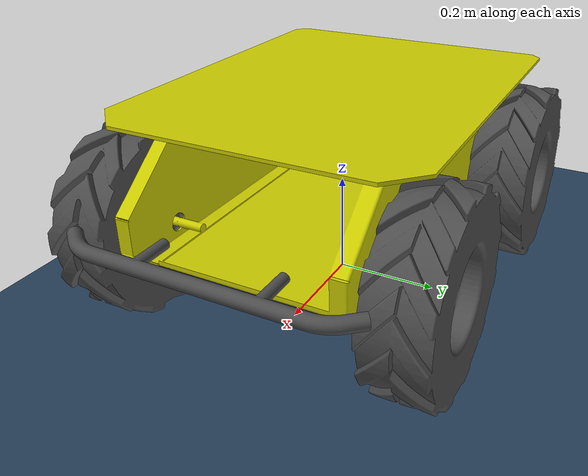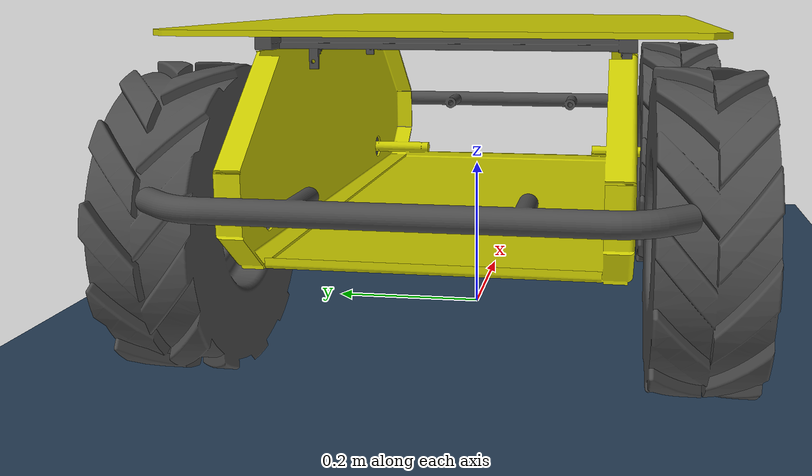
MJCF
<?xml version="1.0" encoding="utf-8"?>
<mujoco model="husky">
    <compiler angle="radian" coordinate="local" inertiafromgeom="true" meshdir="meshes"/>

    <default>
        <joint armature="1" damping="1" limited="false"/>
        <geom contype="1" conaffinity="1" condim="3" friction="1.0 0.0 0.0"/>
    </default>

    <option timestep="0.01" gravity="0 0 -9.81"/>

    <asset>
        <texture type="skybox" builtin="gradient" rgb1="0.3 0.5 0.7" rgb2="0 0 0" width="512" height="512"/>
        <texture name="grid" type="2d" builtin="checker" rgb1=".1 .2 .3" rgb2=".2 .3 .4" width="512" height="512"/>
        <material name="grid" texture="grid" texrepeat="1 1" texuniform="true" reflectance=".2"/>
        <material name="Black" rgba="0.1 0.1 0.1 1.0"/>
        <material name="DarkGrey" rgba="0.3 0.3 0.3 1.0"/>
        <material name="Yellow" rgba="0.8 0.8 0.0 1.0"/>

        <mesh name="base_link" file="base_link.stl"/>
        <mesh name="wheel" file="wheel.stl"/>
        <mesh name="top_plate" file="top_plate.stl"/>
        <mesh name="user_rail" file="user_rail.stl"/>
        <mesh name="bumper" file="bumper.stl"/>
    </asset>

    <worldbody>
        <light name="sunlight"
               directional="true"
               pos="0 0 100"
               dir="0 0 -1"
               diffuse="0.8 0.8 0.8"
               specular="0.2 0.2 0.2"
               ambient="0.4 0.4 0.4"/>
        <camera name="tracking" mode="trackcom" pos="0 -3 1" xyaxes="1 0 0 0 0 1"/>
        <geom name="floor" type="plane" size="10 10 0.1" material="grid"/>

        <!-- Base footprint -->
        <body name="base_footprint" pos="0 0 0">
            <joint name="free" type="free"/>

            <!-- Base link -->
            <body name="base_link" pos="0 0 0.14493">
                <geom type="mesh" mesh="base_link" material="Yellow"/>

                <!-- Front Left Wheel -->
                <body name="front_left_wheel_link" pos="0.256 0.2854 0.03282">
                    <joint name="wheel_fl" type="hinge" axis="0 1 0" damping="0.1"/>
                    <geom type="mesh" mesh="wheel" material="DarkGrey"/>
                </body>

                <!-- Front Right Wheel -->
                <body name="front_right_wheel_link" pos="0.256 -0.2854 0.03282">
                    <joint name="wheel_fr" type="hinge" axis="0 1 0" damping="0.1"/>
                    <geom type="mesh" mesh="wheel" material="DarkGrey"/>
                </body>

                <!-- Rear Left Wheel -->
                <body name="rear_left_wheel_link" pos="-0.256 0.2854 0.03282">
                    <joint name="wheel_bl" type="hinge" axis="0 1 0" damping="0.1"/>
                    <geom type="mesh" mesh="wheel" material="DarkGrey"/>
                </body>

                <!-- Rear Right Wheel -->
                <body name="rear_right_wheel_link" pos="-0.256 -0.2854 0.03282">
                    <joint name="wheel_br" type="hinge" axis="0 1 0" damping="0.1"/>
                    <geom type="mesh" mesh="wheel" material="DarkGrey"/>
                </body>

                <!-- Top Plate -->
                <body name="top_plate_link" pos="0 0 0.245">
                    <geom type="mesh" mesh="top_plate" material="Yellow"/>
                </body>

                <!-- User Rail -->
                <body name="user_rail_link" pos="0.272 0 0.245">
                    <geom type="mesh" mesh="user_rail" material="DarkGrey"/>
                </body>

                <!-- Front Bumper -->
                <body name="front_bumper_link" pos="0.48 0 0.091">
                    <geom type="mesh" mesh="bumper" material="DarkGrey"/>
                </body>

                <!-- Rear Bumper -->
                <body name="rear_bumper_link" pos="-0.48 0 0.091">
                    <geom type="mesh" mesh="bumper" material="DarkGrey" euler="0 0 3.14159"/>
                </body>
            </body>
        </body>
    </worldbody>

    <actuator>
        <motor joint="wheel_fl" name="fl_motor" gear="40"/>
        <motor joint="wheel_fr" name="fr_motor" gear="40"/>
        <motor joint="wheel_bl" name="bl_motor" gear="40"/>
        <motor joint="wheel_br" name="br_motor" gear="40"/>
    </actuator>
</mujoco>
